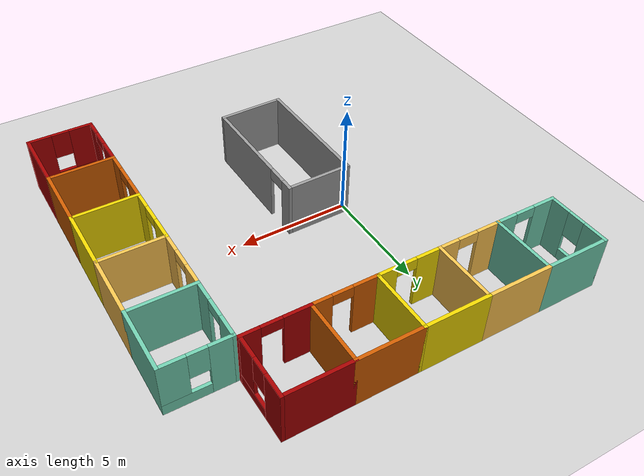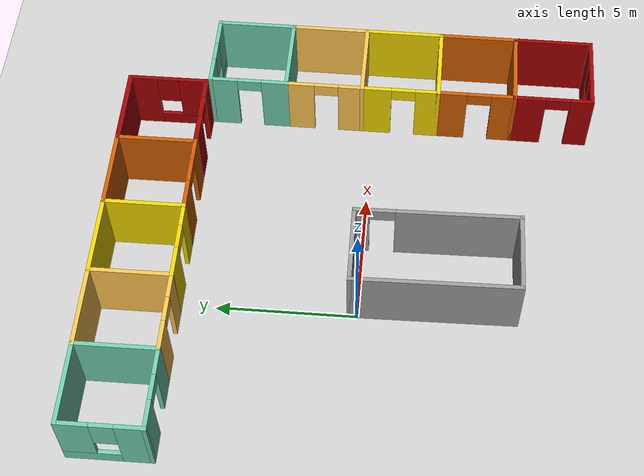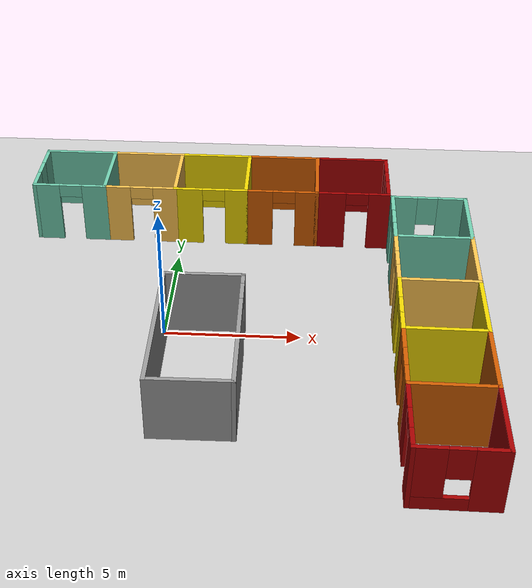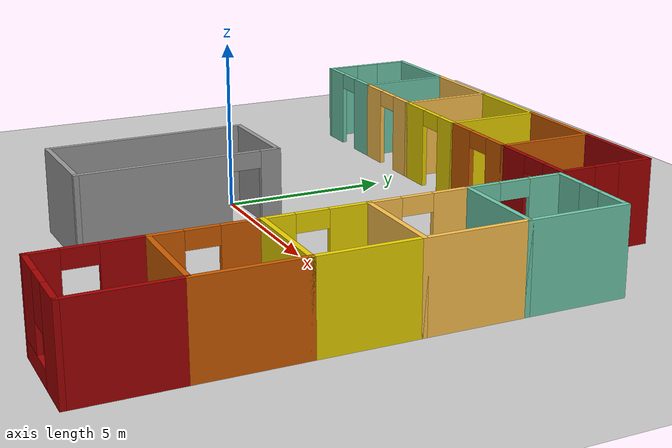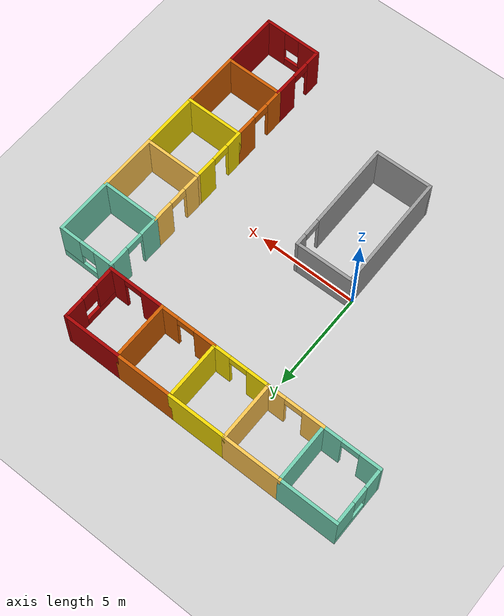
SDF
<sdf version="1.6">
 <world name="default">
  <model name="ground_plane">
   <static>1</static>
   <link name="link">
    <collision name="collision">
     <geometry><plane><normal>0 0 1</normal><size>100 100</size></plane></geometry>
     <surface><friction><ode><mu>100</mu><mu2>50</mu2></ode></friction></surface>
    </collision>
    <visual name="visual">
     <cast_shadows>0</cast_shadows>
     <geometry><plane><normal>0 0 1</normal><size>100 100</size></plane></geometry>
     <material>
      <script><uri>file://media/materials/scripts/gazebo.material</uri><name>Gazebo/Grey</name></script>
     </material>
    </visual>
   </link>
  </model>
  <model name="office_4">
   <pose>1.19285 8.32226 0 0 -0 0</pose>
   <link name="Wall_0">
    <collision name="Wall_0_Collision">
     <geometry><box><size>3 0.15 2.5</size></box></geometry>
     <pose>0 0 1.25 0 -0 0</pose>
    </collision>
    <visual name="Wall_0_Visual">
     <pose>0 0 1.25 0 -0 0</pose>
     <geometry><box><size>3 0.15 2.5</size></box></geometry>
     <material>
      <script><uri>file://media/materials/scripts/gazebo.material</uri><name>Gazebo/Grey</name></script>
      <ambient>0.435294 0.796078 0.67451 1</ambient>
     </material>
     <meta><layer>0</layer></meta>
    </visual>
    <pose>-5.7 0.8025 0 0 -0 0</pose>
   </link>
   <link name="Wall_1">
    <collision name="Wall_1_Collision">
     <geometry><box><size>3 0.15 2.5</size></box></geometry>
     <pose>0 0 1.25 0 -0 0</pose>
    </collision>
    <visual name="Wall_1_Visual">
     <pose>0 0 1.25 0 -0 0</pose>
     <geometry><box><size>3 0.15 2.5</size></box></geometry>
     <material>
      <script><uri>file://media/materials/scripts/gazebo.material</uri><name>Gazebo/Grey</name></script>
      <ambient>0.435294 0.796078 0.67451 1</ambient>
     </material>
     <meta><layer>0</layer></meta>
    </visual>
    <pose>-4.275 -0.6225 0 0 -0 -1.5708</pose>
   </link>
   <link name="Wall_10">
    <pose>5.7 -2.0475 0 0 -0 3.14159</pose>
    <visual name="Wall_10_Visual_0">
     <pose>-1.06469 0 1.25 0 -0 0</pose>
     <geometry><box><size>0.870623 0.15 2.5</size></box></geometry>
     <material>
      <script><uri>file://media/materials/scripts/gazebo.material</uri><name>Gazebo/Grey</name></script>
      <ambient>0.643137 0 0 1</ambient>
     </material>
     <meta><layer>0</layer></meta>
    </visual>
    <collision name="Wall_10_Collision_0">
     <geometry><box><size>0.870623 0.15 2.5</size></box></geometry>
     <pose>-1.06469 0 1.25 0 -0 0</pose>
    </collision>
    <visual name="Wall_10_Visual_1">
     <pose>0.885312 0 1.25 0 -0 0</pose>
     <geometry><box><size>1.22938 0.15 2.5</size></box></geometry>
     <material>
      <script><uri>file://media/materials/scripts/gazebo.material</uri><name>Gazebo/Grey</name></script>
      <ambient>0.643137 0 0 1</ambient>
     </material>
     <meta><layer>0</layer></meta>
    </visual>
    <collision name="Wall_10_Collision_1">
     <geometry><box><size>1.22938 0.15 2.5</size></box></geometry>
     <pose>0.885312 0 1.25 0 -0 0</pose>
    </collision>
    <visual name="Wall_10_Visual_2">
     <pose>-0.179377 0 2.25 0 -0 0</pose>
     <geometry><box><size>0.9 0.15 0.5</size></box></geometry>
     <material>
      <script><uri>file://media/materials/scripts/gazebo.material</uri><name>Gazebo/Grey</name></script>
      <ambient>0.643137 0 0 1</ambient>
     </material>
     <meta><layer>0</layer></meta>
    </visual>
    <collision name="Wall_10_Collision_2">
     <geometry><box><size>0.9 0.15 0.5</size></box></geometry>
     <pose>-0.179377 0 2.25 0 -0 0</pose>
    </collision>
   </link>
   <link name="Wall_12">
    <pose>0 -2.0475 0 0 -0 0</pose>
    <visual name="Wall_12_Visual_0">
     <pose>-0.909766 0 1.25 0 -0 0</pose>
     <geometry><box><size>1.18047 0.15 2.5</size></box></geometry>
     <material>
      <script><uri>file://media/materials/scripts/gazebo.material</uri><name>Gazebo/Grey</name></script>
      <ambient>0.929412 0.831373 0 1</ambient>
     </material>
     <meta><layer>0</layer></meta>
    </visual>
    <collision name="Wall_12_Collision_0">
     <geometry><box><size>1.18047 0.15 2.5</size></box></geometry>
     <pose>-0.909766 0 1.25 0 -0 0</pose>
    </collision>
    <visual name="Wall_12_Visual_1">
     <pose>1.04023 0 1.25 0 -0 0</pose>
     <geometry><box><size>0.919531 0.15 2.5</size></box></geometry>
     <material>
      <script><uri>file://media/materials/scripts/gazebo.material</uri><name>Gazebo/Grey</name></script>
      <ambient>0.929412 0.831373 0 1</ambient>
     </material>
     <meta><layer>0</layer></meta>
    </visual>
    <collision name="Wall_12_Collision_1">
     <geometry><box><size>0.919531 0.15 2.5</size></box></geometry>
     <pose>1.04023 0 1.25 0 -0 0</pose>
    </collision>
    <visual name="Wall_12_Visual_2">
     <pose>0.130469 0 2.25 0 -0 0</pose>
     <geometry><box><size>0.9 0.15 0.5</size></box></geometry>
     <material>
      <script><uri>file://media/materials/scripts/gazebo.material</uri><name>Gazebo/Grey</name></script>
      <ambient>0.929412 0.831373 0 1</ambient>
     </material>
     <meta><layer>0</layer></meta>
    </visual>
    <collision name="Wall_12_Collision_2">
     <geometry><box><size>0.9 0.15 0.5</size></box></geometry>
     <pose>0.130469 0 2.25 0 -0 0</pose>
    </collision>
   </link>
   <link name="Wall_14">
    <collision name="Wall_14_Collision">
     <geometry><box><size>3 0.15 2.5</size></box></geometry>
     <pose>0 0 1.25 0 -0 0</pose>
    </collision>
    <visual name="Wall_14_Visual">
     <pose>0 0 1.25 0 -0 0</pose>
     <geometry><box><size>3 0.15 2.5</size></box></geometry>
     <material>
      <script><uri>file://media/materials/scripts/gazebo.material</uri><name>Gazebo/Grey</name></script>
      <ambient>0.807843 0.360784 0 1</ambient>
     </material>
     <meta><layer>0</layer></meta>
    </visual>
    <pose>2.85 0.8025 0 0 -0 0</pose>
   </link>
   <link name="Wall_16">
    <collision name="Wall_16_Collision">
     <geometry><box><size>3 0.15 2.5</size></box></geometry>
     <pose>0 0 1.25 0 -0 0</pose>
    </collision>
    <visual name="Wall_16_Visual">
     <pose>0 0 1.25 0 -0 0</pose>
     <geometry><box><size>3 0.15 2.5</size></box></geometry>
     <material>
      <script><uri>file://media/materials/scripts/gazebo.material</uri><name>Gazebo/Grey</name></script>
      <ambient>1 0.764706 0.305882 1</ambient>
     </material>
     <meta><layer>0</layer></meta>
    </visual>
    <pose>-2.85 0.8025 0 0 -0 0</pose>
   </link>
   <link name="Wall_18">
    <pose>-5.7 -2.0475 0 0 -0 3.14159</pose>
    <visual name="Wall_18_Visual_0">
     <pose>-0.992968 0 1.25 0 -0 0</pose>
     <geometry><box><size>1.01406 0.15 2.5</size></box></geometry>
     <material>
      <script><uri>file://media/materials/scripts/gazebo.material</uri><name>Gazebo/Grey</name></script>
      <ambient>0.435294 0.796078 0.67451 1</ambient>
     </material>
     <meta><layer>0</layer></meta>
    </visual>
    <collision name="Wall_18_Collision_0">
     <geometry><box><size>1.01406 0.15 2.5</size></box></geometry>
     <pose>-0.992968 0 1.25 0 -0 0</pose>
    </collision>
    <visual name="Wall_18_Visual_1">
     <pose>0.957032 0 1.25 0 -0 0</pose>
     <geometry><box><size>1.08594 0.15 2.5</size></box></geometry>
     <material>
      <script><uri>file://media/materials/scripts/gazebo.material</uri><name>Gazebo/Grey</name></script>
      <ambient>0.435294 0.796078 0.67451 1</ambient>
     </material>
     <meta><layer>0</layer></meta>
    </visual>
    <collision name="Wall_18_Collision_1">
     <geometry><box><size>1.08594 0.15 2.5</size></box></geometry>
     <pose>0.957032 0 1.25 0 -0 0</pose>
    </collision>
    <visual name="Wall_18_Visual_2">
     <pose>-0.035935 0 2.25 0 -0 0</pose>
     <geometry><box><size>0.9 0.15 0.5</size></box></geometry>
     <material>
      <script><uri>file://media/materials/scripts/gazebo.material</uri><name>Gazebo/Grey</name></script>
      <ambient>0.435294 0.796078 0.67451 1</ambient>
     </material>
     <meta><layer>0</layer></meta>
    </visual>
    <collision name="Wall_18_Collision_2">
     <geometry><box><size>0.9 0.15 0.5</size></box></geometry>
     <pose>-0.035935 0 2.25 0 -0 0</pose>
    </collision>
   </link>
   <link name="Wall_19">
    <pose>-7.125 -0.6225 0 0 -0 1.5708</pose>
    <visual name="Wall_19_Visual_0">
     <pose>-0.974081 0 1.25 0 -0 0</pose>
     <geometry><box><size>1.05184 0.15 2.5</size></box></geometry>
     <material>
      <script><uri>file://media/materials/scripts/gazebo.material</uri><name>Gazebo/Grey</name></script>
      <ambient>0.435294 0.796078 0.67451 1</ambient>
     </material>
     <meta><layer>0</layer></meta>
    </visual>
    <collision name="Wall_19_Collision_0">
     <geometry><box><size>1.05184 0.15 2.5</size></box></geometry>
     <pose>-0.974081 0 1.25 0 -0 0</pose>
    </collision>
    <visual name="Wall_19_Visual_1">
     <pose>0.525919 0 0.25 0 -0 0</pose>
     <geometry><box><size>1.94816 0.15 0.5</size></box></geometry>
     <material>
      <script><uri>file://media/materials/scripts/gazebo.material</uri><name>Gazebo/Grey</name></script>
      <ambient>0.435294 0.796078 0.67451 1</ambient>
     </material>
     <meta><layer>0</layer></meta>
    </visual>
    <collision name="Wall_19_Collision_1">
     <geometry><box><size>1.94816 0.15 0.5</size></box></geometry>
     <pose>0.525919 0 0.25 0 -0 0</pose>
    </collision>
    <visual name="Wall_19_Visual_2">
     <pose>0.925919 0 1.5 0 -0 0</pose>
     <geometry><box><size>1.14816 0.15 2</size></box></geometry>
     <material>
      <script><uri>file://media/materials/scripts/gazebo.material</uri><name>Gazebo/Grey</name></script>
      <ambient>0.435294 0.796078 0.67451 1</ambient>
     </material>
     <meta><layer>0</layer></meta>
    </visual>
    <collision name="Wall_19_Collision_2">
     <geometry><box><size>1.14816 0.15 2</size></box></geometry>
     <pose>0.925919 0 1.5 0 -0 0</pose>
    </collision>
    <visual name="Wall_19_Visual_3">
     <pose>-0.048161 0 1.9 0 -0 0</pose>
     <geometry><box><size>0.8 0.15 1.2</size></box></geometry>
     <material>
      <script><uri>file://media/materials/scripts/gazebo.material</uri><name>Gazebo/Grey</name></script>
      <ambient>0.435294 0.796078 0.67451 1</ambient>
     </material>
     <meta><layer>0</layer></meta>
    </visual>
    <collision name="Wall_19_Collision_3">
     <geometry><box><size>0.8 0.15 1.2</size></box></geometry>
     <pose>-0.048161 0 1.9 0 -0 0</pose>
    </collision>
   </link>
   <link name="Wall_2">
    <pose>-2.85 -2.0475 0 0 -0 0</pose>
    <visual name="Wall_2_Visual_0">
     <pose>-0.937201 0 1.25 0 -0 0</pose>
     <geometry><box><size>1.1256 0.15 2.5</size></box></geometry>
     <material>
      <script><uri>file://media/materials/scripts/gazebo.material</uri><name>Gazebo/Grey</name></script>
      <ambient>1 0.764706 0.305882 1</ambient>
     </material>
     <meta><layer>0</layer></meta>
    </visual>
    <collision name="Wall_2_Collision_0">
     <geometry><box><size>1.1256 0.15 2.5</size></box></geometry>
     <pose>-0.937201 0 1.25 0 -0 0</pose>
    </collision>
    <visual name="Wall_2_Visual_1">
     <pose>1.0128 0 1.25 0 -0 0</pose>
     <geometry><box><size>0.974402 0.15 2.5</size></box></geometry>
     <material>
      <script><uri>file://media/materials/scripts/gazebo.material</uri><name>Gazebo/Grey</name></script>
      <ambient>1 0.764706 0.305882 1</ambient>
     </material>
     <meta><layer>0</layer></meta>
    </visual>
    <collision name="Wall_2_Collision_1">
     <geometry><box><size>0.974402 0.15 2.5</size></box></geometry>
     <pose>1.0128 0 1.25 0 -0 0</pose>
    </collision>
    <visual name="Wall_2_Visual_2">
     <pose>0.075598 0 2.25 0 -0 0</pose>
     <geometry><box><size>0.9 0.15 0.5</size></box></geometry>
     <material>
      <script><uri>file://media/materials/scripts/gazebo.material</uri><name>Gazebo/Grey</name></script>
      <ambient>1 0.764706 0.305882 1</ambient>
     </material>
     <meta><layer>0</layer></meta>
    </visual>
    <collision name="Wall_2_Collision_2">
     <geometry><box><size>0.9 0.15 0.5</size></box></geometry>
     <pose>0.075598 0 2.25 0 -0 0</pose>
    </collision>
   </link>
   <link name="Wall_3">
    <collision name="Wall_3_Collision">
     <geometry><box><size>3 0.15 2.5</size></box></geometry>
     <pose>0 0 1.25 0 -0 0</pose>
    </collision>
    <visual name="Wall_3_Visual">
     <pose>0 0 1.25 0 -0 0</pose>
     <geometry><box><size>3 0.15 2.5</size></box></geometry>
     <material>
      <script><uri>file://media/materials/scripts/gazebo.material</uri><name>Gazebo/Grey</name></script>
      <ambient>1 0.764706 0.305882 1</ambient>
     </material>
     <meta><layer>0</layer></meta>
    </visual>
    <pose>-1.425 -0.6225 0 0 -0 1.5708</pose>
   </link>
   <link name="Wall_4">
    <collision name="Wall_4_Collision">
     <geometry><box><size>3 0.15 2.5</size></box></geometry>
     <pose>0 0 1.25 0 -0 0</pose>
    </collision>
    <visual name="Wall_4_Visual">
     <pose>0 0 1.25 0 -0 0</pose>
     <geometry><box><size>3 0.15 2.5</size></box></geometry>
     <material>
      <script><uri>file://media/materials/scripts/gazebo.material</uri><name>Gazebo/Grey</name></script>
      <ambient>0.929412 0.831373 0 1</ambient>
     </material>
     <meta><layer>0</layer></meta>
    </visual>
    <pose>0 0.8025 0 0 -0 0</pose>
   </link>
   <link name="Wall_5">
    <collision name="Wall_5_Collision">
     <geometry><box><size>3 0.15 2.5</size></box></geometry>
     <pose>0 0 1.25 0 -0 0</pose>
    </collision>
    <visual name="Wall_5_Visual">
     <pose>0 0 1.25 0 -0 0</pose>
     <geometry><box><size>3 0.15 2.5</size></box></geometry>
     <material>
      <script><uri>file://media/materials/scripts/gazebo.material</uri><name>Gazebo/Grey</name></script>
      <ambient>0.929412 0.831373 0 1</ambient>
     </material>
     <meta><layer>0</layer></meta>
    </visual>
    <pose>1.425 -0.6225 0 0 -0 -1.5708</pose>
   </link>
   <link name="Wall_6">
    <pose>2.85 -2.0475 0 0 -0 0</pose>
    <visual name="Wall_6_Visual_0">
     <pose>-0.920352 0 1.25 0 -0 0</pose>
     <geometry><box><size>1.1593 0.15 2.5</size></box></geometry>
     <material>
      <script><uri>file://media/materials/scripts/gazebo.material</uri><name>Gazebo/Grey</name></script>
      <ambient>0.807843 0.360784 0 1</ambient>
     </material>
     <meta><layer>0</layer></meta>
    </visual>
    <collision name="Wall_6_Collision_0">
     <geometry><box><size>1.1593 0.15 2.5</size></box></geometry>
     <pose>-0.920352 0 1.25 0 -0 0</pose>
    </collision>
    <visual name="Wall_6_Visual_1">
     <pose>1.02965 0 1.25 0 -0 0</pose>
     <geometry><box><size>0.940704 0.15 2.5</size></box></geometry>
     <material>
      <script><uri>file://media/materials/scripts/gazebo.material</uri><name>Gazebo/Grey</name></script>
      <ambient>0.807843 0.360784 0 1</ambient>
     </material>
     <meta><layer>0</layer></meta>
    </visual>
    <collision name="Wall_6_Collision_1">
     <geometry><box><size>0.940704 0.15 2.5</size></box></geometry>
     <pose>1.02965 0 1.25 0 -0 0</pose>
    </collision>
    <visual name="Wall_6_Visual_2">
     <pose>0.109296 0 2.25 0 -0 0</pose>
     <geometry><box><size>0.9 0.15 0.5</size></box></geometry>
     <material>
      <script><uri>file://media/materials/scripts/gazebo.material</uri><name>Gazebo/Grey</name></script>
      <ambient>0.807843 0.360784 0 1</ambient>
     </material>
     <meta><layer>0</layer></meta>
    </visual>
    <collision name="Wall_6_Collision_2">
     <geometry><box><size>0.9 0.15 0.5</size></box></geometry>
     <pose>0.109296 0 2.25 0 -0 0</pose>
    </collision>
   </link>
   <link name="Wall_7">
    <collision name="Wall_7_Collision">
     <geometry><box><size>3 0.15 2.5</size></box></geometry>
     <pose>0 0 1.25 0 -0 0</pose>
    </collision>
    <visual name="Wall_7_Visual">
     <pose>0 0 1.25 0 -0 0</pose>
     <geometry><box><size>3 0.15 2.5</size></box></geometry>
     <material>
      <script><uri>file://media/materials/scripts/gazebo.material</uri><name>Gazebo/Grey</name></script>
      <ambient>0.807843 0.360784 0 1</ambient>
     </material>
     <meta><layer>0</layer></meta>
    </visual>
    <pose>4.275 -0.6225 0 0 -0 1.5708</pose>
   </link>
   <link name="Wall_8">
    <collision name="Wall_8_Collision">
     <geometry><box><size>3 0.15 2.5</size></box></geometry>
     <pose>0 0 1.25 0 -0 0</pose>
    </collision>
    <visual name="Wall_8_Visual">
     <pose>0 0 1.25 0 -0 0</pose>
     <geometry><box><size>3 0.15 2.5</size></box></geometry>
     <material>
      <script><uri>file://media/materials/scripts/gazebo.material</uri><name>Gazebo/Grey</name></script>
      <ambient>0.643137 0 0 1</ambient>
     </material>
     <meta><layer>0</layer></meta>
    </visual>
    <pose>5.7 0.8025 0 0 -0 0</pose>
   </link>
   <link name="Wall_9">
    <pose>7.125 -0.6225 0 0 -0 -1.5708</pose>
    <visual name="Wall_9_Visual_0">
     <pose>-0.956337 0 1.25 0 -0 0</pose>
     <geometry><box><size>1.08733 0.15 2.5</size></box></geometry>
     <material>
      <script><uri>file://media/materials/scripts/gazebo.material</uri><name>Gazebo/Grey</name></script>
      <ambient>0.643137 0 0 1</ambient>
     </material>
     <meta><layer>0</layer></meta>
    </visual>
    <collision name="Wall_9_Collision_0">
     <geometry><box><size>1.08733 0.15 2.5</size></box></geometry>
     <pose>-0.956337 0 1.25 0 -0 0</pose>
    </collision>
    <visual name="Wall_9_Visual_1">
     <pose>0.543663 0 0.25 0 -0 0</pose>
     <geometry><box><size>1.91267 0.15 0.5</size></box></geometry>
     <material>
      <script><uri>file://media/materials/scripts/gazebo.material</uri><name>Gazebo/Grey</name></script>
      <ambient>0.643137 0 0 1</ambient>
     </material>
     <meta><layer>0</layer></meta>
    </visual>
    <collision name="Wall_9_Collision_1">
     <geometry><box><size>1.91267 0.15 0.5</size></box></geometry>
     <pose>0.543663 0 0.25 0 -0 0</pose>
    </collision>
    <visual name="Wall_9_Visual_2">
     <pose>0.943663 0 1.5 0 -0 0</pose>
     <geometry><box><size>1.11267 0.15 2</size></box></geometry>
     <material>
      <script><uri>file://media/materials/scripts/gazebo.material</uri><name>Gazebo/Grey</name></script>
      <ambient>0.643137 0 0 1</ambient>
     </material>
     <meta><layer>0</layer></meta>
    </visual>
    <collision name="Wall_9_Collision_2">
     <geometry><box><size>1.11267 0.15 2</size></box></geometry>
     <pose>0.943663 0 1.5 0 -0 0</pose>
    </collision>
    <visual name="Wall_9_Visual_3">
     <pose>-0.012674 0 1.9 0 -0 0</pose>
     <geometry><box><size>0.8 0.15 1.2</size></box></geometry>
     <material>
      <script><uri>file://media/materials/scripts/gazebo.material</uri><name>Gazebo/Grey</name></script>
      <ambient>0.643137 0 0 1</ambient>
     </material>
     <meta><layer>0</layer></meta>
    </visual>
    <collision name="Wall_9_Collision_3">
     <geometry><box><size>0.8 0.15 1.2</size></box></geometry>
     <pose>-0.012674 0 1.9 0 -0 0</pose>
    </collision>
   </link>
   <static>1</static>
  </model>
  <model name="office_4_0">
   <pose>10.4539 -1.01902 0 0 0 -1.57842</pose>
   <link name="Wall_0">
    <collision name="Wall_0_Collision">
     <geometry><box><size>3 0.15 2.5</size></box></geometry>
     <pose>0 0 1.25 0 -0 0</pose>
    </collision>
    <visual name="Wall_0_Visual">
     <pose>0 0 1.25 0 -0 0</pose>
     <geometry><box><size>3 0.15 2.5</size></box></geometry>
     <material>
      <script><uri>file://media/materials/scripts/gazebo.material</uri><name>Gazebo/Grey</name></script>
      <ambient>0.435294 0.796078 0.67451 1</ambient>
     </material>
     <meta><layer>0</layer></meta>
    </visual>
    <pose>-5.7 0.8025 0 0 -0 0</pose>
   </link>
   <link name="Wall_1">
    <collision name="Wall_1_Collision">
     <geometry><box><size>3 0.15 2.5</size></box></geometry>
     <pose>0 0 1.25 0 -0 0</pose>
    </collision>
    <visual name="Wall_1_Visual">
     <pose>0 0 1.25 0 -0 0</pose>
     <geometry><box><size>3 0.15 2.5</size></box></geometry>
     <material>
      <script><uri>file://media/materials/scripts/gazebo.material</uri><name>Gazebo/Grey</name></script>
      <ambient>0.435294 0.796078 0.67451 1</ambient>
     </material>
     <meta><layer>0</layer></meta>
    </visual>
    <pose>-4.275 -0.6225 0 0 -0 -1.5708</pose>
   </link>
   <link name="Wall_10">
    <pose>5.7 -2.0475 0 0 -0 3.14159</pose>
    <visual name="Wall_10_Visual_0">
     <pose>-1.06469 0 1.25 0 -0 0</pose>
     <geometry><box><size>0.870623 0.15 2.5</size></box></geometry>
     <material>
      <script><uri>file://media/materials/scripts/gazebo.material</uri><name>Gazebo/Grey</name></script>
      <ambient>0.643137 0 0 1</ambient>
     </material>
     <meta><layer>0</layer></meta>
    </visual>
    <collision name="Wall_10_Collision_0">
     <geometry><box><size>0.870623 0.15 2.5</size></box></geometry>
     <pose>-1.06469 0 1.25 0 -0 0</pose>
    </collision>
    <visual name="Wall_10_Visual_1">
     <pose>0.885312 0 1.25 0 -0 0</pose>
     <geometry><box><size>1.22938 0.15 2.5</size></box></geometry>
     <material>
      <script><uri>file://media/materials/scripts/gazebo.material</uri><name>Gazebo/Grey</name></script>
      <ambient>0.643137 0 0 1</ambient>
     </material>
     <meta><layer>0</layer></meta>
    </visual>
    <collision name="Wall_10_Collision_1">
     <geometry><box><size>1.22938 0.15 2.5</size></box></geometry>
     <pose>0.885312 0 1.25 0 -0 0</pose>
    </collision>
    <visual name="Wall_10_Visual_2">
     <pose>-0.179377 0 2.25 0 -0 0</pose>
     <geometry><box><size>0.9 0.15 0.5</size></box></geometry>
     <material>
      <script><uri>file://media/materials/scripts/gazebo.material</uri><name>Gazebo/Grey</name></script>
      <ambient>0.643137 0 0 1</ambient>
     </material>
     <meta><layer>0</layer></meta>
    </visual>
    <collision name="Wall_10_Collision_2">
     <geometry><box><size>0.9 0.15 0.5</size></box></geometry>
     <pose>-0.179377 0 2.25 0 -0 0</pose>
    </collision>
   </link>
   <link name="Wall_12">
    <pose>0 -2.0475 0 0 -0 0</pose>
    <visual name="Wall_12_Visual_0">
     <pose>-0.909766 0 1.25 0 -0 0</pose>
     <geometry><box><size>1.18047 0.15 2.5</size></box></geometry>
     <material>
      <script><uri>file://media/materials/scripts/gazebo.material</uri><name>Gazebo/Grey</name></script>
      <ambient>0.929412 0.831373 0 1</ambient>
     </material>
     <meta><layer>0</layer></meta>
    </visual>
    <collision name="Wall_12_Collision_0">
     <geometry><box><size>1.18047 0.15 2.5</size></box></geometry>
     <pose>-0.909766 0 1.25 0 -0 0</pose>
    </collision>
    <visual name="Wall_12_Visual_1">
     <pose>1.04023 0 1.25 0 -0 0</pose>
     <geometry><box><size>0.919531 0.15 2.5</size></box></geometry>
     <material>
      <script><uri>file://media/materials/scripts/gazebo.material</uri><name>Gazebo/Grey</name></script>
      <ambient>0.929412 0.831373 0 1</ambient>
     </material>
     <meta><layer>0</layer></meta>
    </visual>
    <collision name="Wall_12_Collision_1">
     <geometry><box><size>0.919531 0.15 2.5</size></box></geometry>
     <pose>1.04023 0 1.25 0 -0 0</pose>
    </collision>
    <visual name="Wall_12_Visual_2">
     <pose>0.130469 0 2.25 0 -0 0</pose>
     <geometry><box><size>0.9 0.15 0.5</size></box></geometry>
     <material>
      <script><uri>file://media/materials/scripts/gazebo.material</uri><name>Gazebo/Grey</name></script>
      <ambient>0.929412 0.831373 0 1</ambient>
     </material>
     <meta><layer>0</layer></meta>
    </visual>
    <collision name="Wall_12_Collision_2">
     <geometry><box><size>0.9 0.15 0.5</size></box></geometry>
     <pose>0.130469 0 2.25 0 -0 0</pose>
    </collision>
   </link>
   <link name="Wall_14">
    <collision name="Wall_14_Collision">
     <geometry><box><size>3 0.15 2.5</size></box></geometry>
     <pose>0 0 1.25 0 -0 0</pose>
    </collision>
    <visual name="Wall_14_Visual">
     <pose>0 0 1.25 0 -0 0</pose>
     <geometry><box><size>3 0.15 2.5</size></box></geometry>
     <material>
      <script><uri>file://media/materials/scripts/gazebo.material</uri><name>Gazebo/Grey</name></script>
      <ambient>0.807843 0.360784 0 1</ambient>
     </material>
     <meta><layer>0</layer></meta>
    </visual>
    <pose>2.85 0.8025 0 0 -0 0</pose>
   </link>
   <link name="Wall_16">
    <collision name="Wall_16_Collision">
     <geometry><box><size>3 0.15 2.5</size></box></geometry>
     <pose>0 0 1.25 0 -0 0</pose>
    </collision>
    <visual name="Wall_16_Visual">
     <pose>0 0 1.25 0 -0 0</pose>
     <geometry><box><size>3 0.15 2.5</size></box></geometry>
     <material>
      <script><uri>file://media/materials/scripts/gazebo.material</uri><name>Gazebo/Grey</name></script>
      <ambient>1 0.764706 0.305882 1</ambient>
     </material>
     <meta><layer>0</layer></meta>
    </visual>
    <pose>-2.85 0.8025 0 0 -0 0</pose>
   </link>
   <link name="Wall_18">
    <pose>-5.7 -2.0475 0 0 -0 3.14159</pose>
    <visual name="Wall_18_Visual_0">
     <pose>-0.992968 0 1.25 0 -0 0</pose>
     <geometry><box><size>1.01406 0.15 2.5</size></box></geometry>
     <material>
      <script><uri>file://media/materials/scripts/gazebo.material</uri><name>Gazebo/Grey</name></script>
      <ambient>0.435294 0.796078 0.67451 1</ambient>
     </material>
     <meta><layer>0</layer></meta>
    </visual>
    <collision name="Wall_18_Collision_0">
     <geometry><box><size>1.01406 0.15 2.5</size></box></geometry>
     <pose>-0.992968 0 1.25 0 -0 0</pose>
    </collision>
    <visual name="Wall_18_Visual_1">
     <pose>0.957032 0 1.25 0 -0 0</pose>
     <geometry><box><size>1.08594 0.15 2.5</size></box></geometry>
     <material>
      <script><uri>file://media/materials/scripts/gazebo.material</uri><name>Gazebo/Grey</name></script>
      <ambient>0.435294 0.796078 0.67451 1</ambient>
     </material>
     <meta><layer>0</layer></meta>
    </visual>
    <collision name="Wall_18_Collision_1">
     <geometry><box><size>1.08594 0.15 2.5</size></box></geometry>
     <pose>0.957032 0 1.25 0 -0 0</pose>
    </collision>
    <visual name="Wall_18_Visual_2">
     <pose>-0.035935 0 2.25 0 -0 0</pose>
     <geometry><box><size>0.9 0.15 0.5</size></box></geometry>
     <material>
      <script><uri>file://media/materials/scripts/gazebo.material</uri><name>Gazebo/Grey</name></script>
      <ambient>0.435294 0.796078 0.67451 1</ambient>
     </material>
     <meta><layer>0</layer></meta>
    </visual>
    <collision name="Wall_18_Collision_2">
     <geometry><box><size>0.9 0.15 0.5</size></box></geometry>
     <pose>-0.035935 0 2.25 0 -0 0</pose>
    </collision>
   </link>
   <link name="Wall_19">
    <pose>-7.125 -0.6225 0 0 -0 1.5708</pose>
    <visual name="Wall_19_Visual_0">
     <pose>-0.974081 0 1.25 0 -0 0</pose>
     <geometry><box><size>1.05184 0.15 2.5</size></box></geometry>
     <material>
      <script><uri>file://media/materials/scripts/gazebo.material</uri><name>Gazebo/Grey</name></script>
      <ambient>0.435294 0.796078 0.67451 1</ambient>
     </material>
     <meta><layer>0</layer></meta>
    </visual>
    <collision name="Wall_19_Collision_0">
     <geometry><box><size>1.05184 0.15 2.5</size></box></geometry>
     <pose>-0.974081 0 1.25 0 -0 0</pose>
    </collision>
    <visual name="Wall_19_Visual_1">
     <pose>0.525919 0 0.25 0 -0 0</pose>
     <geometry><box><size>1.94816 0.15 0.5</size></box></geometry>
     <material>
      <script><uri>file://media/materials/scripts/gazebo.material</uri><name>Gazebo/Grey</name></script>
      <ambient>0.435294 0.796078 0.67451 1</ambient>
     </material>
     <meta><layer>0</layer></meta>
    </visual>
    <collision name="Wall_19_Collision_1">
     <geometry><box><size>1.94816 0.15 0.5</size></box></geometry>
     <pose>0.525919 0 0.25 0 -0 0</pose>
    </collision>
    <visual name="Wall_19_Visual_2">
     <pose>0.925919 0 1.5 0 -0 0</pose>
     <geometry><box><size>1.14816 0.15 2</size></box></geometry>
     <material>
      <script><uri>file://media/materials/scripts/gazebo.material</uri><name>Gazebo/Grey</name></script>
      <ambient>0.435294 0.796078 0.67451 1</ambient>
     </material>
     <meta><layer>0</layer></meta>
    </visual>
    <collision name="Wall_19_Collision_2">
     <geometry><box><size>1.14816 0.15 2</size></box></geometry>
     <pose>0.925919 0 1.5 0 -0 0</pose>
    </collision>
    <visual name="Wall_19_Visual_3">
     <pose>-0.048161 0 1.9 0 -0 0</pose>
     <geometry><box><size>0.8 0.15 1.2</size></box></geometry>
     <material>
      <script><uri>file://media/materials/scripts/gazebo.material</uri><name>Gazebo/Grey</name></script>
      <ambient>0.435294 0.796078 0.67451 1</ambient>
     </material>
     <meta><layer>0</layer></meta>
    </visual>
    <collision name="Wall_19_Collision_3">
     <geometry><box><size>0.8 0.15 1.2</size></box></geometry>
     <pose>-0.048161 0 1.9 0 -0 0</pose>
    </collision>
   </link>
   <link name="Wall_2">
    <pose>-2.85 -2.0475 0 0 -0 0</pose>
    <visual name="Wall_2_Visual_0">
     <pose>-0.937201 0 1.25 0 -0 0</pose>
     <geometry><box><size>1.1256 0.15 2.5</size></box></geometry>
     <material>
      <script><uri>file://media/materials/scripts/gazebo.material</uri><name>Gazebo/Grey</name></script>
      <ambient>1 0.764706 0.305882 1</ambient>
     </material>
     <meta><layer>0</layer></meta>
    </visual>
    <collision name="Wall_2_Collision_0">
     <geometry><box><size>1.1256 0.15 2.5</size></box></geometry>
     <pose>-0.937201 0 1.25 0 -0 0</pose>
    </collision>
    <visual name="Wall_2_Visual_1">
     <pose>1.0128 0 1.25 0 -0 0</pose>
     <geometry><box><size>0.974402 0.15 2.5</size></box></geometry>
     <material>
      <script><uri>file://media/materials/scripts/gazebo.material</uri><name>Gazebo/Grey</name></script>
      <ambient>1 0.764706 0.305882 1</ambient>
     </material>
     <meta><layer>0</layer></meta>
    </visual>
    <collision name="Wall_2_Collision_1">
     <geometry><box><size>0.974402 0.15 2.5</size></box></geometry>
     <pose>1.0128 0 1.25 0 -0 0</pose>
    </collision>
    <visual name="Wall_2_Visual_2">
     <pose>0.075598 0 2.25 0 -0 0</pose>
     <geometry><box><size>0.9 0.15 0.5</size></box></geometry>
     <material>
      <script><uri>file://media/materials/scripts/gazebo.material</uri><name>Gazebo/Grey</name></script>
      <ambient>1 0.764706 0.305882 1</ambient>
     </material>
     <meta><layer>0</layer></meta>
    </visual>
    <collision name="Wall_2_Collision_2">
     <geometry><box><size>0.9 0.15 0.5</size></box></geometry>
     <pose>0.075598 0 2.25 0 -0 0</pose>
    </collision>
   </link>
   <link name="Wall_3">
    <collision name="Wall_3_Collision">
     <geometry><box><size>3 0.15 2.5</size></box></geometry>
     <pose>0 0 1.25 0 -0 0</pose>
    </collision>
    <visual name="Wall_3_Visual">
     <pose>0 0 1.25 0 -0 0</pose>
     <geometry><box><size>3 0.15 2.5</size></box></geometry>
     <material>
      <script><uri>file://media/materials/scripts/gazebo.material</uri><name>Gazebo/Grey</name></script>
      <ambient>1 0.764706 0.305882 1</ambient>
     </material>
     <meta><layer>0</layer></meta>
    </visual>
    <pose>-1.425 -0.6225 0 0 -0 1.5708</pose>
   </link>
   <link name="Wall_4">
    <collision name="Wall_4_Collision">
     <geometry><box><size>3 0.15 2.5</size></box></geometry>
     <pose>0 0 1.25 0 -0 0</pose>
    </collision>
    <visual name="Wall_4_Visual">
     <pose>0 0 1.25 0 -0 0</pose>
     <geometry><box><size>3 0.15 2.5</size></box></geometry>
     <material>
      <script><uri>file://media/materials/scripts/gazebo.material</uri><name>Gazebo/Grey</name></script>
      <ambient>0.929412 0.831373 0 1</ambient>
     </material>
     <meta><layer>0</layer></meta>
    </visual>
    <pose>0 0.8025 0 0 -0 0</pose>
   </link>
   <link name="Wall_5">
    <collision name="Wall_5_Collision">
     <geometry><box><size>3 0.15 2.5</size></box></geometry>
     <pose>0 0 1.25 0 -0 0</pose>
    </collision>
    <visual name="Wall_5_Visual">
     <pose>0 0 1.25 0 -0 0</pose>
     <geometry><box><size>3 0.15 2.5</size></box></geometry>
     <material>
      <script><uri>file://media/materials/scripts/gazebo.material</uri><name>Gazebo/Grey</name></script>
      <ambient>0.929412 0.831373 0 1</ambient>
     </material>
     <meta><layer>0</layer></meta>
    </visual>
    <pose>1.425 -0.6225 0 0 -0 -1.5708</pose>
   </link>
   <link name="Wall_6">
    <pose>2.85 -2.0475 0 0 -0 0</pose>
    <visual name="Wall_6_Visual_0">
     <pose>-0.920352 0 1.25 0 -0 0</pose>
     <geometry><box><size>1.1593 0.15 2.5</size></box></geometry>
     <material>
      <script><uri>file://media/materials/scripts/gazebo.material</uri><name>Gazebo/Grey</name></script>
      <ambient>0.807843 0.360784 0 1</ambient>
     </material>
     <meta><layer>0</layer></meta>
    </visual>
    <collision name="Wall_6_Collision_0">
     <geometry><box><size>1.1593 0.15 2.5</size></box></geometry>
     <pose>-0.920352 0 1.25 0 -0 0</pose>
    </collision>
    <visual name="Wall_6_Visual_1">
     <pose>1.02965 0 1.25 0 -0 0</pose>
     <geometry><box><size>0.940704 0.15 2.5</size></box></geometry>
     <material>
      <script><uri>file://media/materials/scripts/gazebo.material</uri><name>Gazebo/Grey</name></script>
      <ambient>0.807843 0.360784 0 1</ambient>
     </material>
     <meta><layer>0</layer></meta>
    </visual>
    <collision name="Wall_6_Collision_1">
     <geometry><box><size>0.940704 0.15 2.5</size></box></geometry>
     <pose>1.02965 0 1.25 0 -0 0</pose>
    </collision>
    <visual name="Wall_6_Visual_2">
     <pose>0.109296 0 2.25 0 -0 0</pose>
     <geometry><box><size>0.9 0.15 0.5</size></box></geometry>
     <material>
      <script><uri>file://media/materials/scripts/gazebo.material</uri><name>Gazebo/Grey</name></script>
      <ambient>0.807843 0.360784 0 1</ambient>
     </material>
     <meta><layer>0</layer></meta>
    </visual>
    <collision name="Wall_6_Collision_2">
     <geometry><box><size>0.9 0.15 0.5</size></box></geometry>
     <pose>0.109296 0 2.25 0 -0 0</pose>
    </collision>
   </link>
   <link name="Wall_7">
    <collision name="Wall_7_Collision">
     <geometry><box><size>3 0.15 2.5</size></box></geometry>
     <pose>0 0 1.25 0 -0 0</pose>
    </collision>
    <visual name="Wall_7_Visual">
     <pose>0 0 1.25 0 -0 0</pose>
     <geometry><box><size>3 0.15 2.5</size></box></geometry>
     <material>
      <script><uri>file://media/materials/scripts/gazebo.material</uri><name>Gazebo/Grey</name></script>
      <ambient>0.807843 0.360784 0 1</ambient>
     </material>
     <meta><layer>0</layer></meta>
    </visual>
    <pose>4.275 -0.6225 0 0 -0 1.5708</pose>
   </link>
   <link name="Wall_8">
    <collision name="Wall_8_Collision">
     <geometry><box><size>3 0.15 2.5</size></box></geometry>
     <pose>0 0 1.25 0 -0 0</pose>
    </collision>
    <visual name="Wall_8_Visual">
     <pose>0 0 1.25 0 -0 0</pose>
     <geometry><box><size>3 0.15 2.5</size></box></geometry>
     <material>
      <script><uri>file://media/materials/scripts/gazebo.material</uri><name>Gazebo/Grey</name></script>
      <ambient>0.643137 0 0 1</ambient>
     </material>
     <meta><layer>0</layer></meta>
    </visual>
    <pose>5.7 0.8025 0 0 -0 0</pose>
   </link>
   <link name="Wall_9">
    <pose>7.125 -0.6225 0 0 -0 -1.5708</pose>
    <visual name="Wall_9_Visual_0">
     <pose>-0.956337 0 1.25 0 -0 0</pose>
     <geometry><box><size>1.08733 0.15 2.5</size></box></geometry>
     <material>
      <script><uri>file://media/materials/scripts/gazebo.material</uri><name>Gazebo/Grey</name></script>
      <ambient>0.643137 0 0 1</ambient>
     </material>
     <meta><layer>0</layer></meta>
    </visual>
    <collision name="Wall_9_Collision_0">
     <geometry><box><size>1.08733 0.15 2.5</size></box></geometry>
     <pose>-0.956337 0 1.25 0 -0 0</pose>
    </collision>
    <visual name="Wall_9_Visual_1">
     <pose>0.543663 0 0.25 0 -0 0</pose>
     <geometry><box><size>1.91267 0.15 0.5</size></box></geometry>
     <material>
      <script><uri>file://media/materials/scripts/gazebo.material</uri><name>Gazebo/Grey</name></script>
      <ambient>0.643137 0 0 1</ambient>
     </material>
     <meta><layer>0</layer></meta>
    </visual>
    <collision name="Wall_9_Collision_1">
     <geometry><box><size>1.91267 0.15 0.5</size></box></geometry>
     <pose>0.543663 0 0.25 0 -0 0</pose>
    </collision>
    <visual name="Wall_9_Visual_2">
     <pose>0.943663 0 1.5 0 -0 0</pose>
     <geometry><box><size>1.11267 0.15 2</size></box></geometry>
     <material>
      <script><uri>file://media/materials/scripts/gazebo.material</uri><name>Gazebo/Grey</name></script>
      <ambient>0.643137 0 0 1</ambient>
     </material>
     <meta><layer>0</layer></meta>
    </visual>
    <collision name="Wall_9_Collision_2">
     <geometry><box><size>1.11267 0.15 2</size></box></geometry>
     <pose>0.943663 0 1.5 0 -0 0</pose>
    </collision>
    <visual name="Wall_9_Visual_3">
     <pose>-0.012674 0 1.9 0 -0 0</pose>
     <geometry><box><size>0.8 0.15 1.2</size></box></geometry>
     <material>
      <script><uri>file://media/materials/scripts/gazebo.material</uri><name>Gazebo/Grey</name></script>
      <ambient>0.643137 0 0 1</ambient>
     </material>
     <meta><layer>0</layer></meta>
    </visual>
    <collision name="Wall_9_Collision_3">
     <geometry><box><size>0.8 0.15 1.2</size></box></geometry>
     <pose>-0.012674 0 1.9 0 -0 0</pose>
    </collision>
   </link>
   <static>1</static>
  </model>
  <model name="office2_1">
   <pose>2.15937 -2.61448 0 0 0 -1.55917</pose>
   <link name="Wall_1">
    <collision name="Wall_1_Collision">
     <geometry><box><size>6 0.15 2.5</size></box></geometry>
     <pose>0 0 1.25 0 -0 0</pose>
    </collision>
    <visual name="Wall_1_Visual">
     <pose>0 0 1.25 0 -0 0</pose>
     <geometry><box><size>6 0.15 2.5</size></box></geometry>
     <material>
      <script><uri>file://media/materials/scripts/gazebo.material</uri><name>Gazebo/Grey</name></script>
      <ambient>1 1 1 1</ambient>
     </material>
     <meta><layer>0</layer></meta>
    </visual>
    <pose>0 -2.0825 0 0 -0 0</pose>
   </link>
   <link name="Wall_2">
    <collision name="Wall_2_Collision">
     <geometry><box><size>3 0.15 2.5</size></box></geometry>
     <pose>0 0 1.25 0 -0 0</pose>
    </collision>
    <visual name="Wall_2_Visual">
     <pose>0 0 1.25 0 -0 0</pose>
     <geometry><box><size>3 0.15 2.5</size></box></geometry>
     <material>
      <script><uri>file://media/materials/scripts/gazebo.material</uri><name>Gazebo/Grey</name></script>
      <ambient>1 1 1 1</ambient>
     </material>
     <meta><layer>0</layer></meta>
    </visual>
    <pose>2.925 -0.6575 0 0 -0 1.5708</pose>
   </link>
   <link name="Wall_3">
    <pose>0 0.7675 0 0 -0 3.14159</pose>
    <visual name="Wall_3_Visual_0">
     <pose>-0.7575 0 1.25 0 -0 0</pose>
     <geometry><box><size>4.485 0.15 2.5</size></box></geometry>
     <material>
      <script><uri>file://media/materials/scripts/gazebo.material</uri><name>Gazebo/Grey</name></script>
      <ambient>1 1 1 1</ambient>
     </material>
     <meta><layer>0</layer></meta>
    </visual>
    <collision name="Wall_3_Collision_0">
     <geometry><box><size>4.485 0.15 2.5</size></box></geometry>
     <pose>-0.7575 0 1.25 0 -0 0</pose>
    </collision>
    <visual name="Wall_3_Visual_1">
     <pose>2.6925 0 1.25 0 -0 0</pose>
     <geometry><box><size>0.615 0.15 2.5</size></box></geometry>
     <material>
      <script><uri>file://media/materials/scripts/gazebo.material</uri><name>Gazebo/Grey</name></script>
      <ambient>1 1 1 1</ambient>
     </material>
     <meta><layer>0</layer></meta>
    </visual>
    <collision name="Wall_3_Collision_1">
     <geometry><box><size>0.615 0.15 2.5</size></box></geometry>
     <pose>2.6925 0 1.25 0 -0 0</pose>
    </collision>
    <visual name="Wall_3_Visual_2">
     <pose>1.935 0 2.25 0 -0 0</pose>
     <geometry><box><size>0.9 0.15 0.5</size></box></geometry>
     <material>
      <script><uri>file://media/materials/scripts/gazebo.material</uri><name>Gazebo/Grey</name></script>
      <ambient>1 1 1 1</ambient>
     </material>
     <meta><layer>0</layer></meta>
    </visual>
    <collision name="Wall_3_Collision_2">
     <geometry><box><size>0.9 0.15 0.5</size></box></geometry>
     <pose>1.935 0 2.25 0 -0 0</pose>
    </collision>
   </link>
   <link name="Wall_4">
    <collision name="Wall_4_Collision">
     <geometry><box><size>3 0.15 2.5</size></box></geometry>
     <pose>0 0 1.25 0 -0 0</pose>
    </collision>
    <visual name="Wall_4_Visual">
     <pose>0 0 1.25 0 -0 0</pose>
     <geometry><box><size>3 0.15 2.5</size></box></geometry>
     <material>
      <script><uri>file://media/materials/scripts/gazebo.material</uri><name>Gazebo/Grey</name></script>
      <ambient>1 1 1 1</ambient>
     </material>
     <meta><layer>0</layer></meta>
    </visual>
    <pose>-2.925 -0.6575 0 0 -0 -1.5708</pose>
   </link>
   <static>1</static>
  </model>
 </world>
</sdf>
